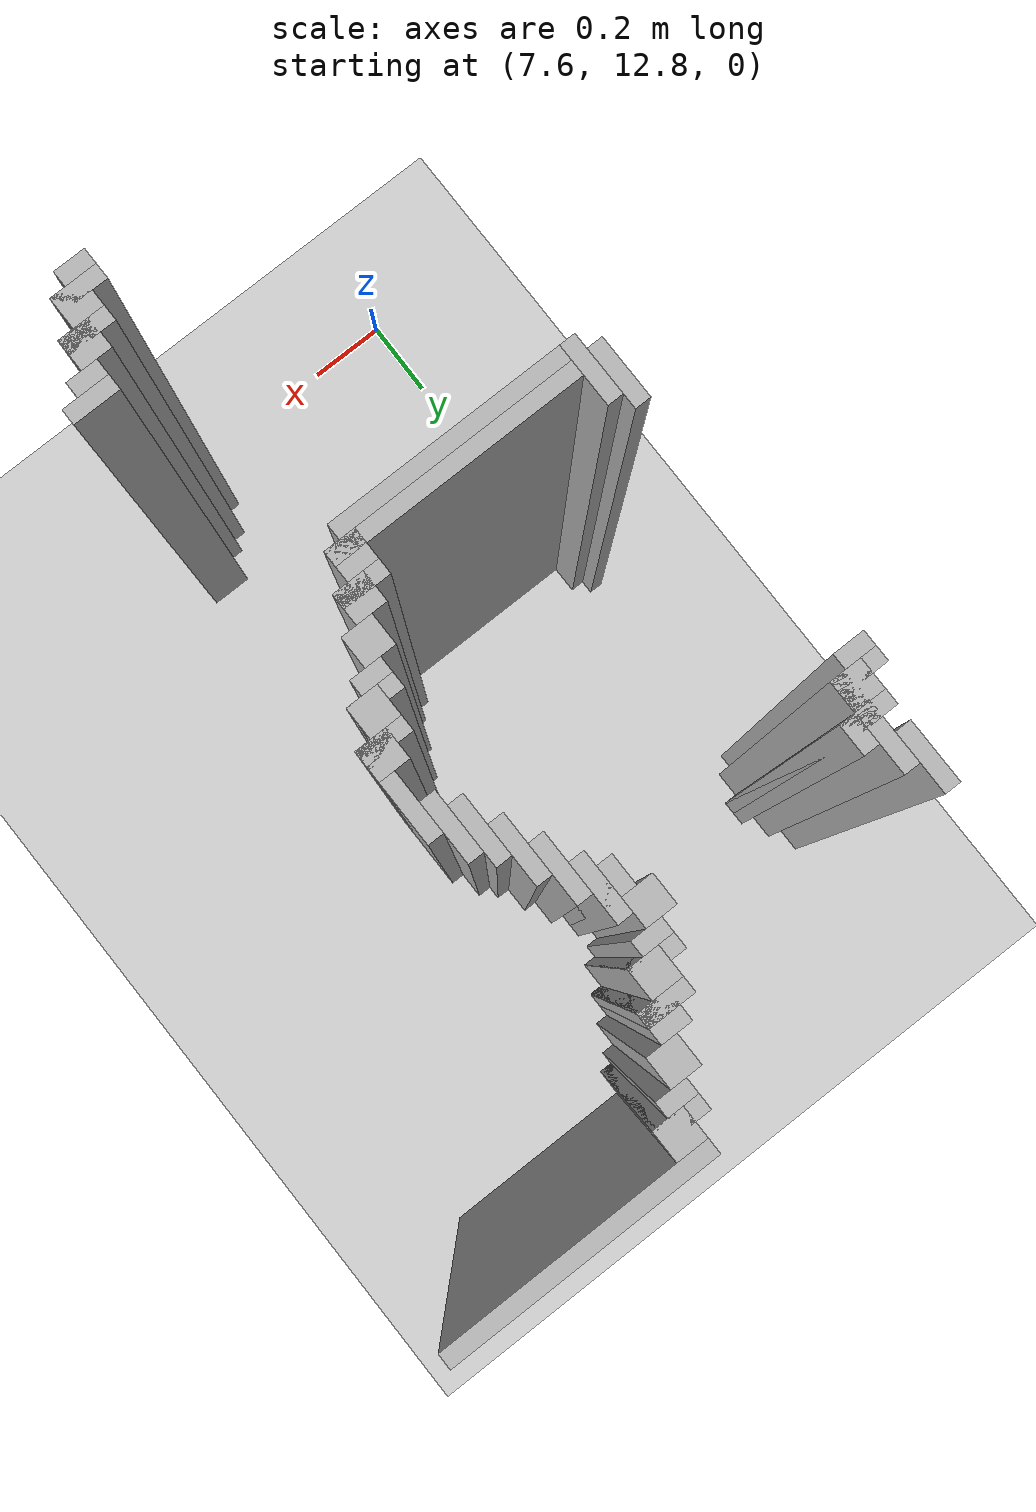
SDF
<sdf version="1.6">
 <world name="slam_world">
  <model name="ground_plane">
   <static>true</static>
   <link name="link">
    <collision name="collision">
     <geometry><plane><normal>0 0 1</normal><size>100 100</size></plane></geometry>
    </collision>
    <visual name="visual">
     <geometry><plane><normal>0 0 1</normal><size>100 100</size></plane></geometry>
     <material>
      <ambient>0.8 0.8 0.8 1</ambient>
      <diffuse>0.8 0.8 0.8 1</diffuse>
      <specular>0.8 0.8 0.8 1</specular>
     </material>
    </visual>
   </link>
  </model>
  <model name="wall_863">
   <static>true</static>
   <pose>8.578886310904872 14.80858468677494 1.0 0 0 0</pose>
   <link name="link">
    <collision name="collision">
     <geometry><box><size>0.5916473317865429 0.03480278422273782 2.0</size></box></geometry>
    </collision>
    <visual name="visual">
     <geometry><box><size>0.5916473317865429 0.03480278422273782 2.0</size></box></geometry>
     <material><ambient>0.5 0.5 0.5 1</ambient><diffuse>0.7 0.7 0.7 1</diffuse></material>
    </visual>
   </link>
  </model>
  <model name="wall_874">
   <static>true</static>
   <pose>8.317865429234338 14.756380510440835 1.0 0 0 0</pose>
   <link name="link">
    <collision name="collision">
     <geometry><box><size>0.06960556844547564 0.06960556844547564 2.0</size></box></geometry>
    </collision>
    <visual name="visual">
     <geometry><box><size>0.06960556844547564 0.06960556844547564 2.0</size></box></geometry>
     <material><ambient>0.5 0.5 0.5 1</ambient><diffuse>0.7 0.7 0.7 1</diffuse></material>
    </visual>
   </link>
  </model>
  <model name="wall_886">
   <static>true</static>
   <pose>8.30046403712297 14.738979118329466 1.0 0 0 0</pose>
   <link name="link">
    <collision name="collision">
     <geometry><box><size>0.10440835266821345 0.03480278422273782 2.0</size></box></geometry>
    </collision>
    <visual name="visual">
     <geometry><box><size>0.10440835266821345 0.03480278422273782 2.0</size></box></geometry>
     <material><ambient>0.5 0.5 0.5 1</ambient><diffuse>0.7 0.7 0.7 1</diffuse></material>
    </visual>
   </link>
  </model>
  <model name="wall_895">
   <static>true</static>
   <pose>8.2830626450116 14.704176334106728 1.0 0 0 0</pose>
   <link name="link">
    <collision name="collision">
     <geometry><box><size>0.06960556844547564 0.03480278422273782 2.0</size></box></geometry>
    </collision>
    <visual name="visual">
     <geometry><box><size>0.06960556844547564 0.03480278422273782 2.0</size></box></geometry>
     <material><ambient>0.5 0.5 0.5 1</ambient><diffuse>0.7 0.7 0.7 1</diffuse></material>
    </visual>
   </link>
  </model>
  <model name="wall_906">
   <static>true</static>
   <pose>8.248259860788863 14.65197215777262 1.0 0 0 0</pose>
   <link name="link">
    <collision name="collision">
     <geometry><box><size>0.06960556844547564 0.06960556844547564 2.0</size></box></geometry>
    </collision>
    <visual name="visual">
     <geometry><box><size>0.06960556844547564 0.06960556844547564 2.0</size></box></geometry>
     <material><ambient>0.5 0.5 0.5 1</ambient><diffuse>0.7 0.7 0.7 1</diffuse></material>
    </visual>
   </link>
  </model>
  <model name="wall_918">
   <static>true</static>
   <pose>8.213457076566124 14.582366589327146 1.0 0 0 0</pose>
   <link name="link">
    <collision name="collision">
     <geometry><box><size>0.06960556844547564 0.06960556844547564 2.0</size></box></geometry>
    </collision>
    <visual name="visual">
     <geometry><box><size>0.06960556844547564 0.06960556844547564 2.0</size></box></geometry>
     <material><ambient>0.5 0.5 0.5 1</ambient><diffuse>0.7 0.7 0.7 1</diffuse></material>
    </visual>
   </link>
  </model>
  <model name="wall_929">
   <static>true</static>
   <pose>7.569605568445476 14.512761020881669 1.0 0 0 0</pose>
   <link name="link">
    <collision name="collision">
     <geometry><box><size>0.03480278422273782 0.13921113689095127 2.0</size></box></geometry>
    </collision>
    <visual name="visual">
     <geometry><box><size>0.03480278422273782 0.13921113689095127 2.0</size></box></geometry>
     <material><ambient>0.5 0.5 0.5 1</ambient><diffuse>0.7 0.7 0.7 1</diffuse></material>
    </visual>
   </link>
  </model>
  <model name="wall_930">
   <static>true</static>
   <pose>8.196055684454755 14.564965197215777 1.0 0 0 0</pose>
   <link name="link">
    <collision name="collision">
     <geometry><box><size>0.10440835266821345 0.03480278422273782 2.0</size></box></geometry>
    </collision>
    <visual name="visual">
     <geometry><box><size>0.10440835266821345 0.03480278422273782 2.0</size></box></geometry>
     <material><ambient>0.5 0.5 0.5 1</ambient><diffuse>0.7 0.7 0.7 1</diffuse></material>
    </visual>
   </link>
  </model>
  <model name="wall_939">
   <static>true</static>
   <pose>8.178654292343387 14.512761020881669 1.0 0 0 0</pose>
   <link name="link">
    <collision name="collision">
     <geometry><box><size>0.06960556844547564 0.06960556844547564 2.0</size></box></geometry>
    </collision>
    <visual name="visual">
     <geometry><box><size>0.06960556844547564 0.06960556844547564 2.0</size></box></geometry>
     <material><ambient>0.5 0.5 0.5 1</ambient><diffuse>0.7 0.7 0.7 1</diffuse></material>
    </visual>
   </link>
  </model>
  <model name="wall_948">
   <static>true</static>
   <pose>7.604408352668213 14.408352668213457 1.0 0 0 0</pose>
   <link name="link">
    <collision name="collision">
     <geometry><box><size>0.03480278422273782 0.2088167053364269 2.0</size></box></geometry>
    </collision>
    <visual name="visual">
     <geometry><box><size>0.03480278422273782 0.2088167053364269 2.0</size></box></geometry>
     <material><ambient>0.5 0.5 0.5 1</ambient><diffuse>0.7 0.7 0.7 1</diffuse></material>
    </visual>
   </link>
  </model>
  <model name="wall_949">
   <static>true</static>
   <pose>8.161252900232018 14.4953596287703 1.0 0 0 0</pose>
   <link name="link">
    <collision name="collision">
     <geometry><box><size>0.10440835266821345 0.03480278422273782 2.0</size></box></geometry>
    </collision>
    <visual name="visual">
     <geometry><box><size>0.10440835266821345 0.03480278422273782 2.0</size></box></geometry>
     <material><ambient>0.5 0.5 0.5 1</ambient><diffuse>0.7 0.7 0.7 1</diffuse></material>
    </visual>
   </link>
  </model>
  <model name="wall_958">
   <static>true</static>
   <pose>8.14385150812065 14.460556844547563 1.0 0 0 0</pose>
   <link name="link">
    <collision name="collision">
     <geometry><box><size>0.06960556844547564 0.03480278422273782 2.0</size></box></geometry>
    </collision>
    <visual name="visual">
     <geometry><box><size>0.06960556844547564 0.03480278422273782 2.0</size></box></geometry>
     <material><ambient>0.5 0.5 0.5 1</ambient><diffuse>0.7 0.7 0.7 1</diffuse></material>
    </visual>
   </link>
  </model>
  <model name="wall_969">
   <static>true</static>
   <pose>7.6392111368909505 14.408352668213457 1.0 0 0 0</pose>
   <link name="link">
    <collision name="collision">
     <geometry><box><size>0.03480278422273782 0.06960556844547564 2.0</size></box></geometry>
    </collision>
    <visual name="visual">
     <geometry><box><size>0.03480278422273782 0.06960556844547564 2.0</size></box></geometry>
     <material><ambient>0.5 0.5 0.5 1</ambient><diffuse>0.7 0.7 0.7 1</diffuse></material>
    </visual>
   </link>
  </model>
  <model name="wall_970">
   <static>true</static>
   <pose>8.109048723897912 14.408352668213457 1.0 0 0 0</pose>
   <link name="link">
    <collision name="collision">
     <geometry><box><size>0.06960556844547564 0.06960556844547564 2.0</size></box></geometry>
    </collision>
    <visual name="visual">
     <geometry><box><size>0.06960556844547564 0.06960556844547564 2.0</size></box></geometry>
     <material><ambient>0.5 0.5 0.5 1</ambient><diffuse>0.7 0.7 0.7 1</diffuse></material>
    </visual>
   </link>
  </model>
  <model name="wall_983">
   <static>true</static>
   <pose>7.604408352668213 14.390951276102088 1.0 0 0 0</pose>
   <link name="link">
    <collision name="collision">
     <geometry><box><size>0.10440835266821345 0.03480278422273782 2.0</size></box></geometry>
    </collision>
    <visual name="visual">
     <geometry><box><size>0.10440835266821345 0.03480278422273782 2.0</size></box></geometry>
     <material><ambient>0.5 0.5 0.5 1</ambient><diffuse>0.7 0.7 0.7 1</diffuse></material>
    </visual>
   </link>
  </model>
  <model name="wall_984">
   <static>true</static>
   <pose>8.161252900232018 14.33874709976798 1.0 0 0 0</pose>
   <link name="link">
    <collision name="collision">
     <geometry><box><size>0.03480278422273782 0.13921113689095127 2.0</size></box></geometry>
    </collision>
    <visual name="visual">
     <geometry><box><size>0.03480278422273782 0.13921113689095127 2.0</size></box></geometry>
     <material><ambient>0.5 0.5 0.5 1</ambient><diffuse>0.7 0.7 0.7 1</diffuse></material>
    </visual>
   </link>
  </model>
  <model name="wall_998">
   <static>true</static>
   <pose>7.587006960556844 14.33874709976798 1.0 0 0 0</pose>
   <link name="link">
    <collision name="collision">
     <geometry><box><size>0.06960556844547564 0.06960556844547564 2.0</size></box></geometry>
    </collision>
    <visual name="visual">
     <geometry><box><size>0.06960556844547564 0.06960556844547564 2.0</size></box></geometry>
     <material><ambient>0.5 0.5 0.5 1</ambient><diffuse>0.7 0.7 0.7 1</diffuse></material>
    </visual>
   </link>
  </model>
  <model name="wall_999">
   <static>true</static>
   <pose>8.14385150812065 14.33874709976798 1.0 0 0 0</pose>
   <link name="link">
    <collision name="collision">
     <geometry><box><size>0.06960556844547564 0.06960556844547564 2.0</size></box></geometry>
    </collision>
    <visual name="visual">
     <geometry><box><size>0.06960556844547564 0.06960556844547564 2.0</size></box></geometry>
     <material><ambient>0.5 0.5 0.5 1</ambient><diffuse>0.7 0.7 0.7 1</diffuse></material>
    </visual>
   </link>
  </model>
  <model name="wall_1013">
   <static>true</static>
   <pose>7.569605568445476 14.321345707656612 1.0 0 0 0</pose>
   <link name="link">
    <collision name="collision">
     <geometry><box><size>0.10440835266821345 0.03480278422273782 2.0</size></box></geometry>
    </collision>
    <visual name="visual">
     <geometry><box><size>0.10440835266821345 0.03480278422273782 2.0</size></box></geometry>
     <material><ambient>0.5 0.5 0.5 1</ambient><diffuse>0.7 0.7 0.7 1</diffuse></material>
    </visual>
   </link>
  </model>
  <model name="wall_1014">
   <static>true</static>
   <pose>8.196055684454755 14.269141531322505 1.0 0 0 0</pose>
   <link name="link">
    <collision name="collision">
     <geometry><box><size>0.03480278422273782 0.13921113689095127 2.0</size></box></geometry>
    </collision>
    <visual name="visual">
     <geometry><box><size>0.03480278422273782 0.13921113689095127 2.0</size></box></geometry>
     <material><ambient>0.5 0.5 0.5 1</ambient><diffuse>0.7 0.7 0.7 1</diffuse></material>
    </visual>
   </link>
  </model>
  <model name="wall_1026">
   <static>true</static>
   <pose>7.552204176334106 14.286542923433874 1.0 0 0 0</pose>
   <link name="link">
    <collision name="collision">
     <geometry><box><size>0.06960556844547564 0.03480278422273782 2.0</size></box></geometry>
    </collision>
    <visual name="visual">
     <geometry><box><size>0.06960556844547564 0.03480278422273782 2.0</size></box></geometry>
     <material><ambient>0.5 0.5 0.5 1</ambient><diffuse>0.7 0.7 0.7 1</diffuse></material>
    </visual>
   </link>
  </model>
  <model name="wall_1038">
   <static>true</static>
   <pose>8.230858468677495 14.199535962877029 1.0 0 0 0</pose>
   <link name="link">
    <collision name="collision">
     <geometry><box><size>0.03480278422273782 0.13921113689095127 2.0</size></box></geometry>
    </collision>
    <visual name="visual">
     <geometry><box><size>0.03480278422273782 0.13921113689095127 2.0</size></box></geometry>
     <material><ambient>0.5 0.5 0.5 1</ambient><diffuse>0.7 0.7 0.7 1</diffuse></material>
    </visual>
   </link>
  </model>
  <model name="wall_1053">
   <static>true</static>
   <pose>8.265661252900232 14.129930394431554 1.0 0 0 0</pose>
   <link name="link">
    <collision name="collision">
     <geometry><box><size>0.03480278422273782 0.13921113689095127 2.0</size></box></geometry>
    </collision>
    <visual name="visual">
     <geometry><box><size>0.03480278422273782 0.13921113689095127 2.0</size></box></geometry>
     <material><ambient>0.5 0.5 0.5 1</ambient><diffuse>0.7 0.7 0.7 1</diffuse></material>
    </visual>
   </link>
  </model>
  <model name="wall_1068">
   <static>true</static>
   <pose>8.30046403712297 14.095127610208817 1.0 0 0 0</pose>
   <link name="link">
    <collision name="collision">
     <geometry><box><size>0.03480278422273782 0.13921113689095127 2.0</size></box></geometry>
    </collision>
    <visual name="visual">
     <geometry><box><size>0.03480278422273782 0.13921113689095127 2.0</size></box></geometry>
     <material><ambient>0.5 0.5 0.5 1</ambient><diffuse>0.7 0.7 0.7 1</diffuse></material>
    </visual>
   </link>
  </model>
  <model name="wall_1091">
   <static>true</static>
   <pose>8.335266821345707 13.990719257540603 1.0 0 0 0</pose>
   <link name="link">
    <collision name="collision">
     <geometry><box><size>0.03480278422273782 0.2088167053364269 2.0</size></box></geometry>
    </collision>
    <visual name="visual">
     <geometry><box><size>0.03480278422273782 0.2088167053364269 2.0</size></box></geometry>
     <material><ambient>0.5 0.5 0.5 1</ambient><diffuse>0.7 0.7 0.7 1</diffuse></material>
    </visual>
   </link>
  </model>
  <model name="wall_1128">
   <static>true</static>
   <pose>8.317865429234338 13.921113689095128 1.0 0 0 0</pose>
   <link name="link">
    <collision name="collision">
     <geometry><box><size>0.06960556844547564 0.06960556844547564 2.0</size></box></geometry>
    </collision>
    <visual name="visual">
     <geometry><box><size>0.06960556844547564 0.06960556844547564 2.0</size></box></geometry>
     <material><ambient>0.5 0.5 0.5 1</ambient><diffuse>0.7 0.7 0.7 1</diffuse></material>
    </visual>
   </link>
  </model>
  <model name="wall_1143">
   <static>true</static>
   <pose>8.30046403712297 13.903712296983759 1.0 0 0 0</pose>
   <link name="link">
    <collision name="collision">
     <geometry><box><size>0.10440835266821345 0.03480278422273782 2.0</size></box></geometry>
    </collision>
    <visual name="visual">
     <geometry><box><size>0.10440835266821345 0.03480278422273782 2.0</size></box></geometry>
     <material><ambient>0.5 0.5 0.5 1</ambient><diffuse>0.7 0.7 0.7 1</diffuse></material>
    </visual>
   </link>
  </model>
  <model name="wall_1158">
   <static>true</static>
   <pose>8.2830626450116 13.851508120649651 1.0 0 0 0</pose>
   <link name="link">
    <collision name="collision">
     <geometry><box><size>0.06960556844547564 0.06960556844547564 2.0</size></box></geometry>
    </collision>
    <visual name="visual">
     <geometry><box><size>0.06960556844547564 0.06960556844547564 2.0</size></box></geometry>
     <material><ambient>0.5 0.5 0.5 1</ambient><diffuse>0.7 0.7 0.7 1</diffuse></material>
    </visual>
   </link>
  </model>
  <model name="wall_1173">
   <static>true</static>
   <pose>8.265661252900232 13.834106728538282 1.0 0 0 0</pose>
   <link name="link">
    <collision name="collision">
     <geometry><box><size>0.10440835266821345 0.03480278422273782 2.0</size></box></geometry>
    </collision>
    <visual name="visual">
     <geometry><box><size>0.10440835266821345 0.03480278422273782 2.0</size></box></geometry>
     <material><ambient>0.5 0.5 0.5 1</ambient><diffuse>0.7 0.7 0.7 1</diffuse></material>
    </visual>
   </link>
  </model>
  <model name="wall_1183">
   <static>true</static>
   <pose>8.248259860788863 13.799303944315545 1.0 0 0 0</pose>
   <link name="link">
    <collision name="collision">
     <geometry><box><size>0.06960556844547564 0.03480278422273782 2.0</size></box></geometry>
    </collision>
    <visual name="visual">
     <geometry><box><size>0.06960556844547564 0.03480278422273782 2.0</size></box></geometry>
     <material><ambient>0.5 0.5 0.5 1</ambient><diffuse>0.7 0.7 0.7 1</diffuse></material>
    </visual>
   </link>
  </model>
  <model name="wall_1195">
   <static>true</static>
   <pose>8.213457076566124 13.747099767981437 1.0 0 0 0</pose>
   <link name="link">
    <collision name="collision">
     <geometry><box><size>0.06960556844547564 0.06960556844547564 2.0</size></box></geometry>
    </collision>
    <visual name="visual">
     <geometry><box><size>0.06960556844547564 0.06960556844547564 2.0</size></box></geometry>
     <material><ambient>0.5 0.5 0.5 1</ambient><diffuse>0.7 0.7 0.7 1</diffuse></material>
    </visual>
   </link>
  </model>
  <model name="wall_1209">
   <static>true</static>
   <pose>7.569605568445476 13.642691415313225 1.0 0 0 0</pose>
   <link name="link">
    <collision name="collision">
     <geometry><box><size>0.03480278422273782 0.13921113689095127 2.0</size></box></geometry>
    </collision>
    <visual name="visual">
     <geometry><box><size>0.03480278422273782 0.13921113689095127 2.0</size></box></geometry>
     <material><ambient>0.5 0.5 0.5 1</ambient><diffuse>0.7 0.7 0.7 1</diffuse></material>
    </visual>
   </link>
  </model>
  <model name="wall_1210">
   <static>true</static>
   <pose>8.178654292343387 13.677494199535962 1.0 0 0 0</pose>
   <link name="link">
    <collision name="collision">
     <geometry><box><size>0.06960556844547564 0.06960556844547564 2.0</size></box></geometry>
    </collision>
    <visual name="visual">
     <geometry><box><size>0.06960556844547564 0.06960556844547564 2.0</size></box></geometry>
     <material><ambient>0.5 0.5 0.5 1</ambient><diffuse>0.7 0.7 0.7 1</diffuse></material>
    </visual>
   </link>
  </model>
  <model name="wall_1224">
   <static>true</static>
   <pose>7.604408352668213 13.607888631090487 1.0 0 0 0</pose>
   <link name="link">
    <collision name="collision">
     <geometry><box><size>0.03480278422273782 0.13921113689095127 2.0</size></box></geometry>
    </collision>
    <visual name="visual">
     <geometry><box><size>0.03480278422273782 0.13921113689095127 2.0</size></box></geometry>
     <material><ambient>0.5 0.5 0.5 1</ambient><diffuse>0.7 0.7 0.7 1</diffuse></material>
    </visual>
   </link>
  </model>
  <model name="wall_1225">
   <static>true</static>
   <pose>8.161252900232018 13.660092807424594 1.0 0 0 0</pose>
   <link name="link">
    <collision name="collision">
     <geometry><box><size>0.10440835266821345 0.03480278422273782 2.0</size></box></geometry>
    </collision>
    <visual name="visual">
     <geometry><box><size>0.10440835266821345 0.03480278422273782 2.0</size></box></geometry>
     <material><ambient>0.5 0.5 0.5 1</ambient><diffuse>0.7 0.7 0.7 1</diffuse></material>
    </visual>
   </link>
  </model>
  <model name="wall_1235">
   <static>true</static>
   <pose>8.14385150812065 13.607888631090487 1.0 0 0 0</pose>
   <link name="link">
    <collision name="collision">
     <geometry><box><size>0.06960556844547564 0.06960556844547564 2.0</size></box></geometry>
    </collision>
    <visual name="visual">
     <geometry><box><size>0.06960556844547564 0.06960556844547564 2.0</size></box></geometry>
     <material><ambient>0.5 0.5 0.5 1</ambient><diffuse>0.7 0.7 0.7 1</diffuse></material>
    </visual>
   </link>
  </model>
  <model name="wall_1245">
   <static>true</static>
   <pose>7.900232018561485 13.590487238979117 1.0 0 0 0</pose>
   <link name="link">
    <collision name="collision">
     <geometry><box><size>0.5568445475638051 0.03480278422273782 2.0</size></box></geometry>
    </collision>
    <visual name="visual">
     <geometry><box><size>0.5568445475638051 0.03480278422273782 2.0</size></box></geometry>
     <material><ambient>0.5 0.5 0.5 1</ambient><diffuse>0.7 0.7 0.7 1</diffuse></material>
    </visual>
   </link>
  </model>
  <model name="wall_1254">
   <static>true</static>
   <pose>7.882830626450116 13.55568445475638 1.0 0 0 0</pose>
   <link name="link">
    <collision name="collision">
     <geometry><box><size>0.5220417633410672 0.03480278422273782 2.0</size></box></geometry>
    </collision>
    <visual name="visual">
     <geometry><box><size>0.5220417633410672 0.03480278422273782 2.0</size></box></geometry>
     <material><ambient>0.5 0.5 0.5 1</ambient><diffuse>0.7 0.7 0.7 1</diffuse></material>
    </visual>
   </link>
  </model>
  <model name="wall_1378">
   <static>true</static>
   <pose>8.335266821345707 13.103248259860788 1.0 0 0 0</pose>
   <link name="link">
    <collision name="collision">
     <geometry><box><size>0.10440835266821345 0.03480278422273782 2.0</size></box></geometry>
    </collision>
    <visual name="visual">
     <geometry><box><size>0.10440835266821345 0.03480278422273782 2.0</size></box></geometry>
     <material><ambient>0.5 0.5 0.5 1</ambient><diffuse>0.7 0.7 0.7 1</diffuse></material>
    </visual>
   </link>
  </model>
  <model name="wall_1392">
   <static>true</static>
   <pose>8.317865429234338 13.06844547563805 1.0 0 0 0</pose>
   <link name="link">
    <collision name="collision">
     <geometry><box><size>0.06960556844547564 0.03480278422273782 2.0</size></box></geometry>
    </collision>
    <visual name="visual">
     <geometry><box><size>0.06960556844547564 0.03480278422273782 2.0</size></box></geometry>
     <material><ambient>0.5 0.5 0.5 1</ambient><diffuse>0.7 0.7 0.7 1</diffuse></material>
    </visual>
   </link>
  </model>
  <model name="wall_1405">
   <static>true</static>
   <pose>8.2830626450116 13.016241299303944 1.0 0 0 0</pose>
   <link name="link">
    <collision name="collision">
     <geometry><box><size>0.06960556844547564 0.06960556844547564 2.0</size></box></geometry>
    </collision>
    <visual name="visual">
     <geometry><box><size>0.06960556844547564 0.06960556844547564 2.0</size></box></geometry>
     <material><ambient>0.5 0.5 0.5 1</ambient><diffuse>0.7 0.7 0.7 1</diffuse></material>
    </visual>
   </link>
  </model>
  <model name="wall_1420">
   <static>true</static>
   <pose>8.265661252900232 12.998839907192576 1.0 0 0 0</pose>
   <link name="link">
    <collision name="collision">
     <geometry><box><size>0.10440835266821345 0.03480278422273782 2.0</size></box></geometry>
    </collision>
    <visual name="visual">
     <geometry><box><size>0.10440835266821345 0.03480278422273782 2.0</size></box></geometry>
     <material><ambient>0.5 0.5 0.5 1</ambient><diffuse>0.7 0.7 0.7 1</diffuse></material>
    </visual>
   </link>
  </model>
  <model name="wall_1435">
   <static>true</static>
   <pose>8.248259860788863 12.946635730858468 1.0 0 0 0</pose>
   <link name="link">
    <collision name="collision">
     <geometry><box><size>0.06960556844547564 0.06960556844547564 2.0</size></box></geometry>
    </collision>
    <visual name="visual">
     <geometry><box><size>0.06960556844547564 0.06960556844547564 2.0</size></box></geometry>
     <material><ambient>0.5 0.5 0.5 1</ambient><diffuse>0.7 0.7 0.7 1</diffuse></material>
    </visual>
   </link>
  </model>
  <model name="wall_1450">
   <static>true</static>
   <pose>8.230858468677495 12.929234338747099 1.0 0 0 0</pose>
   <link name="link">
    <collision name="collision">
     <geometry><box><size>0.10440835266821345 0.03480278422273782 2.0</size></box></geometry>
    </collision>
    <visual name="visual">
     <geometry><box><size>0.10440835266821345 0.03480278422273782 2.0</size></box></geometry>
     <material><ambient>0.5 0.5 0.5 1</ambient><diffuse>0.7 0.7 0.7 1</diffuse></material>
    </visual>
   </link>
  </model>
  <model name="wall_1463">
   <static>true</static>
   <pose>8.213457076566124 12.894431554524362 1.0 0 0 0</pose>
   <link name="link">
    <collision name="collision">
     <geometry><box><size>0.06960556844547564 0.03480278422273782 2.0</size></box></geometry>
    </collision>
    <visual name="visual">
     <geometry><box><size>0.06960556844547564 0.03480278422273782 2.0</size></box></geometry>
     <material><ambient>0.5 0.5 0.5 1</ambient><diffuse>0.7 0.7 0.7 1</diffuse></material>
    </visual>
   </link>
  </model>
 </world>
</sdf>
